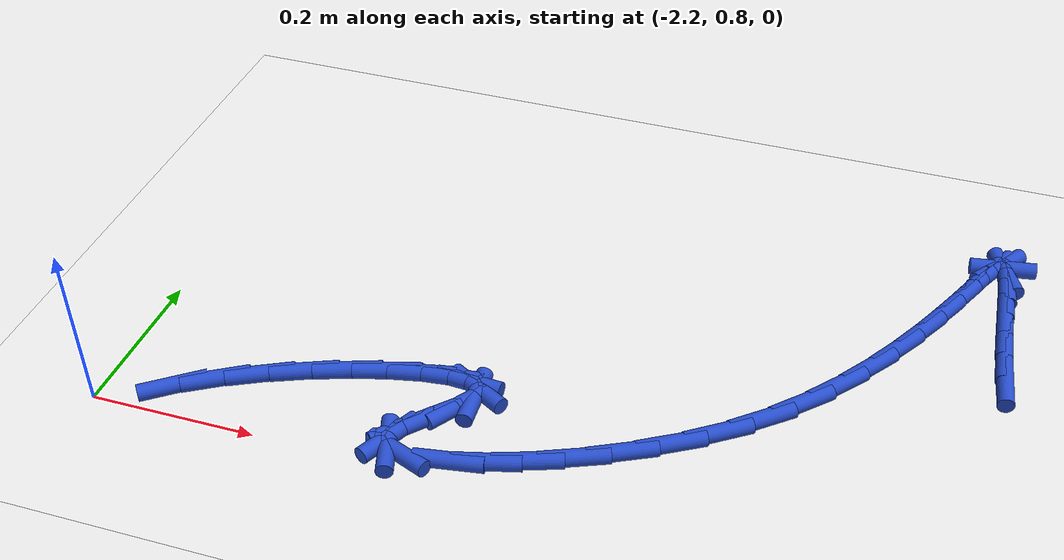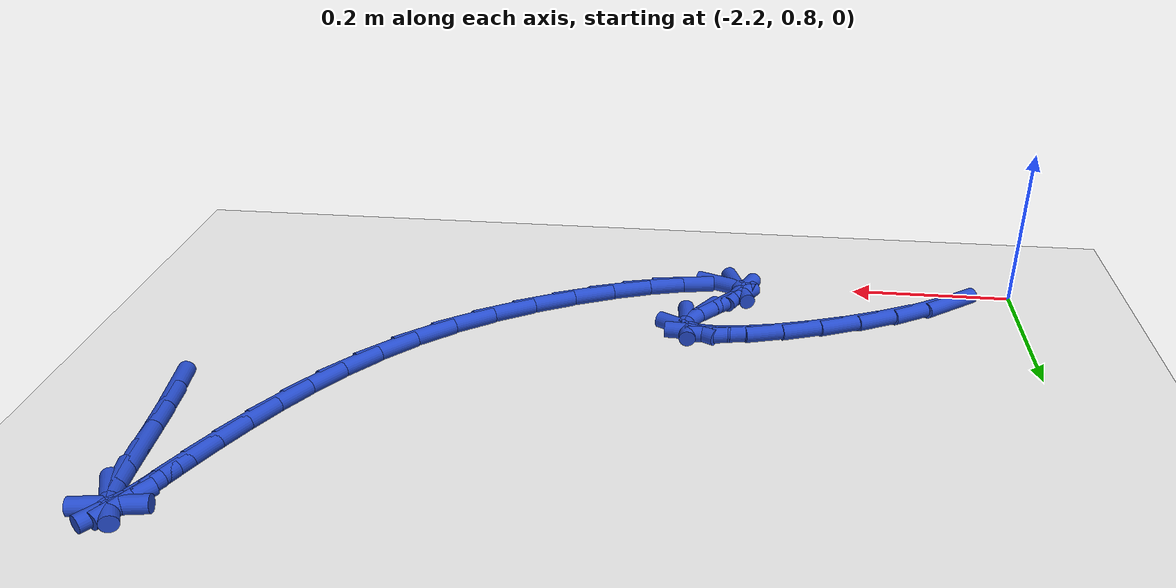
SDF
<sdf version="1.6">
 <world name="default">
  <model name="ground_plane">
   <static>1</static>
   <link name="link">
    <collision name="collision">
     <geometry><plane><normal>0 0 1</normal><size>100 100</size></plane></geometry>
     <surface><friction><ode><mu>100</mu><mu2>50</mu2></ode></friction></surface>
    </collision>
    <visual name="visual">
     <cast_shadows>0</cast_shadows>
     <geometry><plane><normal>0 0 1</normal><size>100 100</size></plane></geometry>
     <material>
      <script><uri>file://media/materials/scripts/gazebo.material</uri><name>Gazebo/WhiteGlow</name></script>
     </material>
    </visual>
   </link>
  </model>
  <model name="line">
   <link name="link_68">
    <pose>-1.2210147062935743 1.1323580195846408 0.01 0 1.57 -1.42966048358006</pose>
    <collision name="collision">
     <geometry><cylinder><radius>0.01</radius><length>0.08</length></cylinder></geometry>
    </collision>
    <visual name="visual">
     <material>
      <script><name>Gazebo/Blue</name><uri>file://media/materials/scripts/gazebo.material</uri></script>
     </material>
     <geometry><cylinder><radius>0.01</radius><length>0.08</length></cylinder></geometry>
    </visual>
   </link>
   <link name="link_69">
    <pose>-1.2267257236478364 1.1725536701069914 0.01 0 1.57 -1.4626901601008142</pose>
    <collision name="collision">
     <geometry><cylinder><radius>0.01</radius><length>0.08</length></cylinder></geometry>
    </collision>
    <visual name="visual">
     <material>
      <script><name>Gazebo/Blue</name><uri>file://media/materials/scripts/gazebo.material</uri></script>
     </material>
     <geometry><cylinder><radius>0.01</radius><length>0.08</length></cylinder></geometry>
    </visual>
   </link>
   <link name="link_70">
    <pose>-1.2310899654176226 1.2127662416270535 0.01 0 1.57 -1.4801144998195659</pose>
    <collision name="collision">
     <geometry><cylinder><radius>0.01</radius><length>0.08</length></cylinder></geometry>
    </collision>
    <visual name="visual">
     <material>
      <script><name>Gazebo/Blue</name><uri>file://media/materials/scripts/gazebo.material</uri></script>
     </material>
     <geometry><cylinder><radius>0.01</radius><length>0.08</length></cylinder></geometry>
    </visual>
   </link>
   <link name="link_71">
    <pose>-1.2345540136928124 1.2508615028378198 0.01 0 1.57 -1.4820786988495482</pose>
    <collision name="collision">
     <geometry><cylinder><radius>0.01</radius><length>0.08</length></cylinder></geometry>
    </collision>
    <visual name="visual">
     <material>
      <script><name>Gazebo/Blue</name><uri>file://media/materials/scripts/gazebo.material</uri></script>
     </material>
     <geometry><cylinder><radius>0.01</radius><length>0.08</length></cylinder></geometry>
    </visual>
   </link>
   <link name="link_72">
    <pose>-1.237564450563285 1.284705222432285 0.01 0 1.57 -1.4618473650053017</pose>
    <collision name="collision">
     <geometry><cylinder><radius>0.01</radius><length>0.08</length></cylinder></geometry>
    </collision>
    <visual name="visual">
     <material>
      <script><name>Gazebo/Blue</name><uri>file://media/materials/scripts/gazebo.material</uri></script>
     </material>
     <geometry><cylinder><radius>0.01</radius><length>0.08</length></cylinder></geometry>
    </visual>
   </link>
   <link name="link_73">
    <pose>-1.240567858118921 1.3121631691034437 0.01 0 1.57 -1.3909582600576658</pose>
    <collision name="collision">
     <geometry><cylinder><radius>0.01</radius><length>0.08</length></cylinder></geometry>
    </collision>
    <visual name="visual">
     <material>
      <script><name>Gazebo/Blue</name><uri>file://media/materials/scripts/gazebo.material</uri></script>
     </material>
     <geometry><cylinder><radius>0.01</radius><length>0.08</length></cylinder></geometry>
    </visual>
   </link>
   <link name="link_74">
    <pose>-1.2440108184495997 1.3311011115442895 0.01 0 1.57 -1.1150318749708443</pose>
    <collision name="collision">
     <geometry><cylinder><radius>0.01</radius><length>0.08</length></cylinder></geometry>
    </collision>
    <visual name="visual">
     <material>
      <script><name>Gazebo/Blue</name><uri>file://media/materials/scripts/gazebo.material</uri></script>
     </material>
     <geometry><cylinder><radius>0.01</radius><length>0.08</length></cylinder></geometry>
    </visual>
   </link>
   <link name="link_75">
    <pose>-1.2483133444187737 1.339878471151186 0.01 0 1.57 0.1642797061229624</pose>
    <collision name="collision">
     <geometry><cylinder><radius>0.01</radius><length>0.08</length></cylinder></geometry>
    </collision>
    <visual name="visual">
     <material>
      <script><name>Gazebo/Blue</name><uri>file://media/materials/scripts/gazebo.material</uri></script>
     </material>
     <geometry><cylinder><radius>0.01</radius><length>0.08</length></cylinder></geometry>
    </visual>
   </link>
   <link name="link_76">
    <pose>-1.2537814907538192 1.3389719963755173 0.01 0 1.57 0.9442838127265565</pose>
    <collision name="collision">
     <geometry><cylinder><radius>0.01</radius><length>0.08</length></cylinder></geometry>
    </collision>
    <visual name="visual">
     <material>
      <script><name>Gazebo/Blue</name><uri>file://media/materials/scripts/gazebo.material</uri></script>
     </material>
     <geometry><cylinder><radius>0.01</radius><length>0.08</length></cylinder></geometry>
    </visual>
   </link>
   <link name="link_77">
    <pose>-1.260690765553075 1.3294259879850352 0.01 0 1.57 1.1045714313756598</pose>
    <collision name="collision">
     <geometry><cylinder><radius>0.01</radius><length>0.08</length></cylinder></geometry>
    </collision>
    <visual name="visual">
     <material>
      <script><name>Gazebo/Blue</name><uri>file://media/materials/scripts/gazebo.material</uri></script>
     </material>
     <geometry><cylinder><radius>0.01</radius><length>0.08</length></cylinder></geometry>
    </visual>
   </link>
   <link name="link_78">
    <pose>-1.2693166765563606 1.3122847534087323 0.01 0 1.57 1.1494672898475495</pose>
    <collision name="collision">
     <geometry><cylinder><radius>0.01</radius><length>0.08</length></cylinder></geometry>
    </collision>
    <visual name="visual">
     <material>
      <script><name>Gazebo/Blue</name><uri>file://media/materials/scripts/gazebo.material</uri></script>
     </material>
     <geometry><cylinder><radius>0.01</radius><length>0.08</length></cylinder></geometry>
    </visual>
   </link>
   <link name="link_79">
    <pose>-1.2799347315034961 1.288592600075601 0.01 0 1.57 1.155192468071799</pose>
    <collision name="collision">
     <geometry><cylinder><radius>0.01</radius><length>0.08</length></cylinder></geometry>
    </collision>
    <visual name="visual">
     <material>
      <script><name>Gazebo/Blue</name><uri>file://media/materials/scripts/gazebo.material</uri></script>
     </material>
     <geometry><cylinder><radius>0.01</radius><length>0.08</length></cylinder></geometry>
    </visual>
   </link>
   <link name="link_80">
    <pose>-1.2928204381343014 1.2593938354146341 0.01 0 1.57 1.141012534290716</pose>
    <collision name="collision">
     <geometry><cylinder><radius>0.01</radius><length>0.08</length></cylinder></geometry>
    </collision>
    <visual name="visual">
     <material>
      <script><name>Gazebo/Blue</name><uri>file://media/materials/scripts/gazebo.material</uri></script>
     </material>
     <geometry><cylinder><radius>0.01</radius><length>0.08</length></cylinder></geometry>
    </visual>
   </link>
   <link name="link_81">
    <pose>-1.3082493041885956 1.225732766854823 0.01 0 1.57 1.1134685774069717</pose>
    <collision name="collision">
     <geometry><cylinder><radius>0.01</radius><length>0.08</length></cylinder></geometry>
    </collision>
    <visual name="visual">
     <material>
      <script><name>Gazebo/Blue</name><uri>file://media/materials/scripts/gazebo.material</uri></script>
     </material>
     <geometry><cylinder><radius>0.01</radius><length>0.08</length></cylinder></geometry>
    </visual>
   </link>
   <link name="link_82">
    <pose>-1.326496837406199 1.1886537018251606 0.01 0 1.57 1.0749329161192567</pose>
    <collision name="collision">
     <geometry><cylinder><radius>0.01</radius><length>0.08</length></cylinder></geometry>
    </collision>
    <visual name="visual">
     <material>
      <script><name>Gazebo/Blue</name><uri>file://media/materials/scripts/gazebo.material</uri></script>
     </material>
     <geometry><cylinder><radius>0.01</radius><length>0.08</length></cylinder></geometry>
    </visual>
   </link>
   <link name="link_83">
    <pose>-1.3478385455269317 1.1492009477546388 0.01 0 1.57 1.026023071655415</pose>
    <collision name="collision">
     <geometry><cylinder><radius>0.01</radius><length>0.08</length></cylinder></geometry>
    </collision>
    <visual name="visual">
     <material>
      <script><name>Gazebo/Blue</name><uri>file://media/materials/scripts/gazebo.material</uri></script>
     </material>
     <geometry><cylinder><radius>0.01</radius><length>0.08</length></cylinder></geometry>
    </visual>
   </link>
   <link name="link_84">
    <pose>-1.3725499362906126 1.108418812072251 0.01 0 1.57 0.9664800934651094</pose>
    <collision name="collision">
     <geometry><cylinder><radius>0.01</radius><length>0.08</length></cylinder></geometry>
    </collision>
    <visual name="visual">
     <material>
      <script><name>Gazebo/Blue</name><uri>file://media/materials/scripts/gazebo.material</uri></script>
     </material>
     <geometry><cylinder><radius>0.01</radius><length>0.08</length></cylinder></geometry>
    </visual>
   </link>
   <link name="link_85">
    <pose>-1.4009065174370618 1.0673516022069884 0.01 0 1.57 0.8955881523786361</pose>
    <collision name="collision">
     <geometry><cylinder><radius>0.01</radius><length>0.08</length></cylinder></geometry>
    </collision>
    <visual name="visual">
     <material>
      <script><name>Gazebo/Blue</name><uri>file://media/materials/scripts/gazebo.material</uri></script>
     </material>
     <geometry><cylinder><radius>0.01</radius><length>0.08</length></cylinder></geometry>
    </visual>
   </link>
   <link name="link_86">
    <pose>-1.4331837967060996 1.0270436255878435 0.01 0 1.57 0.8124788597372141</pose>
    <collision name="collision">
     <geometry><cylinder><radius>0.01</radius><length>0.08</length></cylinder></geometry>
    </collision>
    <visual name="visual">
     <material>
      <script><name>Gazebo/Blue</name><uri>file://media/materials/scripts/gazebo.material</uri></script>
     </material>
     <geometry><cylinder><radius>0.01</radius><length>0.08</length></cylinder></geometry>
    </visual>
   </link>
   <link name="link_87">
    <pose>-1.4696572818375453 0.9885391896438097 0.01 0 1.57 0.717372114097598</pose>
    <collision name="collision">
     <geometry><cylinder><radius>0.01</radius><length>0.08</length></cylinder></geometry>
    </collision>
    <visual name="visual">
     <material>
      <script><name>Gazebo/Blue</name><uri>file://media/materials/scripts/gazebo.material</uri></script>
     </material>
     <geometry><cylinder><radius>0.01</radius><length>0.08</length></cylinder></geometry>
    </visual>
   </link>
   <link name="link_88">
    <pose>-1.510551017496557 0.9528623006194415 0.01 0 1.57 0.6257926193845239</pose>
    <collision name="collision">
     <geometry><cylinder><radius>0.01</radius><length>0.08</length></cylinder></geometry>
    </collision>
    <visual name="visual">
     <material>
      <script><name>Gazebo/Blue</name><uri>file://media/materials/scripts/gazebo.material</uri></script>
     </material>
     <geometry><cylinder><radius>0.01</radius><length>0.08</length></cylinder></geometry>
    </visual>
   </link>
   <link name="link_89">
    <pose>-1.5551182397546026 0.9206539996052835 0.01 0 1.57 0.5476890126919993</pose>
    <collision name="collision">
     <geometry><cylinder><radius>0.01</radius><length>0.08</length></cylinder></geometry>
    </collision>
    <visual name="visual">
     <material>
      <script><name>Gazebo/Blue</name><uri>file://media/materials/scripts/gazebo.material</uri></script>
     </material>
     <geometry><cylinder><radius>0.01</radius><length>0.08</length></cylinder></geometry>
    </visual>
   </link>
   <link name="link_90">
    <pose>-1.601746691006662 0.8922139072293239 0.01 0 1.57 0.47817524152379887</pose>
    <collision name="collision">
     <geometry><cylinder><radius>0.01</radius><length>0.08</length></cylinder></geometry>
    </collision>
    <visual name="visual">
     <material>
      <script><name>Gazebo/Blue</name><uri>file://media/materials/scripts/gazebo.material</uri></script>
     </material>
     <geometry><cylinder><radius>0.01</radius><length>0.08</length></cylinder></geometry>
    </visual>
   </link>
   <link name="link_91">
    <pose>-1.6487938006577754 0.8678296862331697 0.01 0 1.57 0.4122829111961446</pose>
    <collision name="collision">
     <geometry><cylinder><radius>0.01</radius><length>0.08</length></cylinder></geometry>
    </collision>
    <visual name="visual">
     <material>
      <script><name>Gazebo/Blue</name><uri>file://media/materials/scripts/gazebo.material</uri></script>
     </material>
     <geometry><cylinder><radius>0.01</radius><length>0.08</length></cylinder></geometry>
    </visual>
   </link>
   <link name="link_92">
    <pose>-1.6946169981129817 0.8477889993584291 0.01 0 1.57 0.3444231565437472</pose>
    <collision name="collision">
     <geometry><cylinder><radius>0.01</radius><length>0.08</length></cylinder></geometry>
    </collision>
    <visual name="visual">
     <material>
      <script><name>Gazebo/Blue</name><uri>file://media/materials/scripts/gazebo.material</uri></script>
     </material>
     <geometry><cylinder><radius>0.01</radius><length>0.08</length></cylinder></geometry>
    </visual>
   </link>
   <link name="link_93">
    <pose>-1.737573712777321 0.8323795093467089 0.01 0 1.57 0.26637077955919886</pose>
    <collision name="collision">
     <geometry><cylinder><radius>0.01</radius><length>0.08</length></cylinder></geometry>
    </collision>
    <visual name="visual">
     <material>
      <script><name>Gazebo/Blue</name><uri>file://media/materials/scripts/gazebo.material</uri></script>
     </material>
     <geometry><cylinder><radius>0.01</radius><length>0.08</length></cylinder></geometry>
    </visual>
   </link>
   <link name="link_94">
    <pose>-1.7760213740558346 0.8218888789396165 0.01 0 1.57 0.16217778317774573</pose>
    <collision name="collision">
     <geometry><cylinder><radius>0.01</radius><length>0.08</length></cylinder></geometry>
    </collision>
    <visual name="visual">
     <material>
      <script><name>Gazebo/Blue</name><uri>file://media/materials/scripts/gazebo.material</uri></script>
     </material>
     <geometry><cylinder><radius>0.01</radius><length>0.08</length></cylinder></geometry>
    </visual>
   </link>
   <link name="link_96">
    <pose>-1.8328192540755408 0.8168148479057458 0.01 0 1.57 -0.37855319771859064</pose>
    <collision name="collision">
     <geometry><cylinder><radius>0.01</radius><length>0.08</length></cylinder></geometry>
    </collision>
    <visual name="visual">
     <material>
      <script><name>Gazebo/Blue</name><uri>file://media/materials/scripts/gazebo.material</uri></script>
     </material>
     <geometry><cylinder><radius>0.01</radius><length>0.08</length></cylinder></geometry>
    </visual>
   </link>
   <link name="link_97">
    <pose>-1.8478843316268134 0.822806772762182 0.01 0 1.57 -1.2516399897793267</pose>
    <collision name="collision">
     <geometry><cylinder><radius>0.01</radius><length>0.08</length></cylinder></geometry>
    </collision>
    <visual name="visual">
     <material>
      <script><name>Gazebo/Blue</name><uri>file://media/materials/scripts/gazebo.material</uri></script>
     </material>
     <geometry><cylinder><radius>0.01</radius><length>0.08</length></cylinder></geometry>
    </visual>
   </link>
   <link name="link_98">
    <pose>-1.8518700734124203 0.834868208189676 0.01 0 1.57 1.1279096003578268</pose>
    <collision name="collision">
     <geometry><cylinder><radius>0.01</radius><length>0.08</length></cylinder></geometry>
    </collision>
    <visual name="visual">
     <material>
      <script><name>Gazebo/Blue</name><uri>file://media/materials/scripts/gazebo.material</uri></script>
     </material>
     <geometry><cylinder><radius>0.01</radius><length>0.08</length></cylinder></geometry>
    </visual>
   </link>
   <link name="link_99">
    <pose>-1.8431339088373995 0.8532868169298351 0.01 0 1.57 0.8563783402904306</pose>
    <collision name="collision">
     <geometry><cylinder><radius>0.01</radius><length>0.08</length></cylinder></geometry>
    </collision>
    <visual name="visual">
     <material>
      <script><name>Gazebo/Blue</name><uri>file://media/materials/scripts/gazebo.material</uri></script>
     </material>
     <geometry><cylinder><radius>0.01</radius><length>0.08</length></cylinder></geometry>
    </visual>
   </link>
   <link name="link_100">
    <pose>-1.8221984439095569 0.8774271543370277 0.01 0 1.57 0.8260543822090523</pose>
    <collision name="collision">
     <geometry><cylinder><radius>0.01</radius><length>0.08</length></cylinder></geometry>
    </collision>
    <visual name="visual">
     <material>
      <script><name>Gazebo/Blue</name><uri>file://media/materials/scripts/gazebo.material</uri></script>
     </material>
     <geometry><cylinder><radius>0.01</radius><length>0.08</length></cylinder></geometry>
    </visual>
   </link>
   <link name="link_101">
    <pose>-1.798928143164047 0.902670941937598 0.01 0 1.57 0.9923184044780784</pose>
    <collision name="collision">
     <geometry><cylinder><radius>0.01</radius><length>0.08</length></cylinder></geometry>
    </collision>
    <visual name="visual">
     <material>
      <script><name>Gazebo/Blue</name><uri>file://media/materials/scripts/gazebo.material</uri></script>
     </material>
     <geometry><cylinder><radius>0.01</radius><length>0.08</length></cylinder></geometry>
    </visual>
   </link>
   <link name="link_102">
    <pose>-1.7853365234969127 0.9234852141526236 0.01 0 1.57 -1.5087739975017902</pose>
    <collision name="collision">
     <geometry><cylinder><radius>0.01</radius><length>0.08</length></cylinder></geometry>
    </collision>
    <visual name="visual">
     <material>
      <script><name>Gazebo/Blue</name><uri>file://media/materials/scripts/gazebo.material</uri></script>
     </material>
     <geometry><cylinder><radius>0.01</radius><length>0.08</length></cylinder></geometry>
    </visual>
   </link>
   <link name="link_103">
    <pose>-1.7862038318839553 0.9374510874089165 0.01 0 1.57 -0.5085558467334578</pose>
    <collision name="collision">
     <geometry><cylinder><radius>0.01</radius><length>0.08</length></cylinder></geometry>
    </collision>
    <visual name="visual">
     <material>
      <script><name>Gazebo/Blue</name><uri>file://media/materials/scripts/gazebo.material</uri></script>
     </material>
     <geometry><cylinder><radius>0.01</radius><length>0.08</length></cylinder></geometry>
    </visual>
   </link>
   <link name="link_104">
    <pose>-1.799721099261256 0.9449864806159771 0.01 0 1.57 -0.06733710188437318</pose>
    <collision name="collision">
     <geometry><cylinder><radius>0.01</radius><length>0.08</length></cylinder></geometry>
    </collision>
    <visual name="visual">
     <material>
      <script><name>Gazebo/Blue</name><uri>file://media/materials/scripts/gazebo.material</uri></script>
     </material>
     <geometry><cylinder><radius>0.01</radius><length>0.08</length></cylinder></geometry>
    </visual>
   </link>
   <link name="link_105">
    <pose>-1.8238386430505373 0.9466129451474755 0.01 0 1.57 0.11462019488175373</pose>
    <collision name="collision">
     <geometry><cylinder><radius>0.01</radius><length>0.08</length></cylinder></geometry>
    </collision>
    <visual name="visual">
     <material>
      <script><name>Gazebo/Blue</name><uri>file://media/materials/scripts/gazebo.material</uri></script>
     </material>
     <geometry><cylinder><radius>0.01</radius><length>0.08</length></cylinder></geometry>
    </visual>
   </link>
   <link name="link_106">
    <pose>-1.8565067806735205 0.9428520323770816 0.01 0 1.57 0.2167828021427734</pose>
    <collision name="collision">
     <geometry><cylinder><radius>0.01</radius><length>0.08</length></cylinder></geometry>
    </collision>
    <visual name="visual">
     <material>
      <script><name>Gazebo/Blue</name><uri>file://media/materials/scripts/gazebo.material</uri></script>
     </material>
     <geometry><cylinder><radius>0.01</radius><length>0.08</length></cylinder></geometry>
    </visual>
   </link>
   <link name="link_107">
    <pose>-1.895675829551931 0.9342252936784662 0.01 0 1.57 0.2890348631339594</pose>
    <collision name="collision">
     <geometry><cylinder><radius>0.01</radius><length>0.08</length></cylinder></geometry>
    </collision>
    <visual name="visual">
     <material>
      <script><name>Gazebo/Blue</name><uri>file://media/materials/scripts/gazebo.material</uri></script>
     </material>
     <geometry><cylinder><radius>0.01</radius><length>0.08</length></cylinder></geometry>
    </visual>
   </link>
   <link name="link_108">
    <pose>-1.939296107107489 0.9212542804252993 0.01 0 1.57 0.3498937608881619</pose>
    <collision name="collision">
     <geometry><cylinder><radius>0.01</radius><length>0.08</length></cylinder></geometry>
    </collision>
    <visual name="visual">
     <material>
      <script><name>Gazebo/Blue</name><uri>file://media/materials/scripts/gazebo.material</uri></script>
     </material>
     <geometry><cylinder><radius>0.01</radius><length>0.08</length></cylinder></geometry>
    </visual>
   </link>
   <link name="link_109">
    <pose>-1.985317930761919 0.9044605439912514 0.01 0 1.57 0.40890136214490636</pose>
    <collision name="collision">
     <geometry><cylinder><radius>0.01</radius><length>0.08</length></cylinder></geometry>
    </collision>
    <visual name="visual">
     <material>
      <script><name>Gazebo/Blue</name><uri>file://media/materials/scripts/gazebo.material</uri></script>
     </material>
     <geometry><cylinder><radius>0.01</radius><length>0.08</length></cylinder></geometry>
    </visual>
   </link>
   <link name="link_110">
    <pose>-2.0316916179369433 0.8843656357499922 0.01 0 1.57 0.4732100454059434</pose>
    <collision name="collision">
     <geometry><cylinder><radius>0.01</radius><length>0.08</length></cylinder></geometry>
    </collision>
    <visual name="visual">
     <material>
      <script><name>Gazebo/Blue</name><uri>file://media/materials/scripts/gazebo.material</uri></script>
     </material>
     <geometry><cylinder><radius>0.01</radius><length>0.08</length></cylinder></geometry>
    </visual>
   </link>
   <link name="link_111">
    <pose>-2.0763674860542842 0.8614911070751926 0.01 0 1.57 0.5506958599718</pose>
    <collision name="collision">
     <geometry><cylinder><radius>0.01</radius><length>0.08</length></cylinder></geometry>
    </collision>
    <visual name="visual">
     <material>
      <script><name>Gazebo/Blue</name><uri>file://media/materials/scripts/gazebo.material</uri></script>
     </material>
     <geometry><cylinder><radius>0.01</radius><length>0.08</length></cylinder></geometry>
    </visual>
   </link>
   <link name="link_112">
    <pose>-2.117295852535664 0.8363585093405228 0.01 0 1.57 0.6524484184061967</pose>
    <collision name="collision">
     <geometry><cylinder><radius>0.01</radius><length>0.08</length></cylinder></geometry>
    </collision>
    <visual name="visual">
     <material>
      <script><name>Gazebo/Blue</name><uri>file://media/materials/scripts/gazebo.material</uri></script>
     </material>
     <geometry><cylinder><radius>0.01</radius><length>0.08</length></cylinder></geometry>
    </visual>
   </link>
  </model>
 </world>
</sdf>
